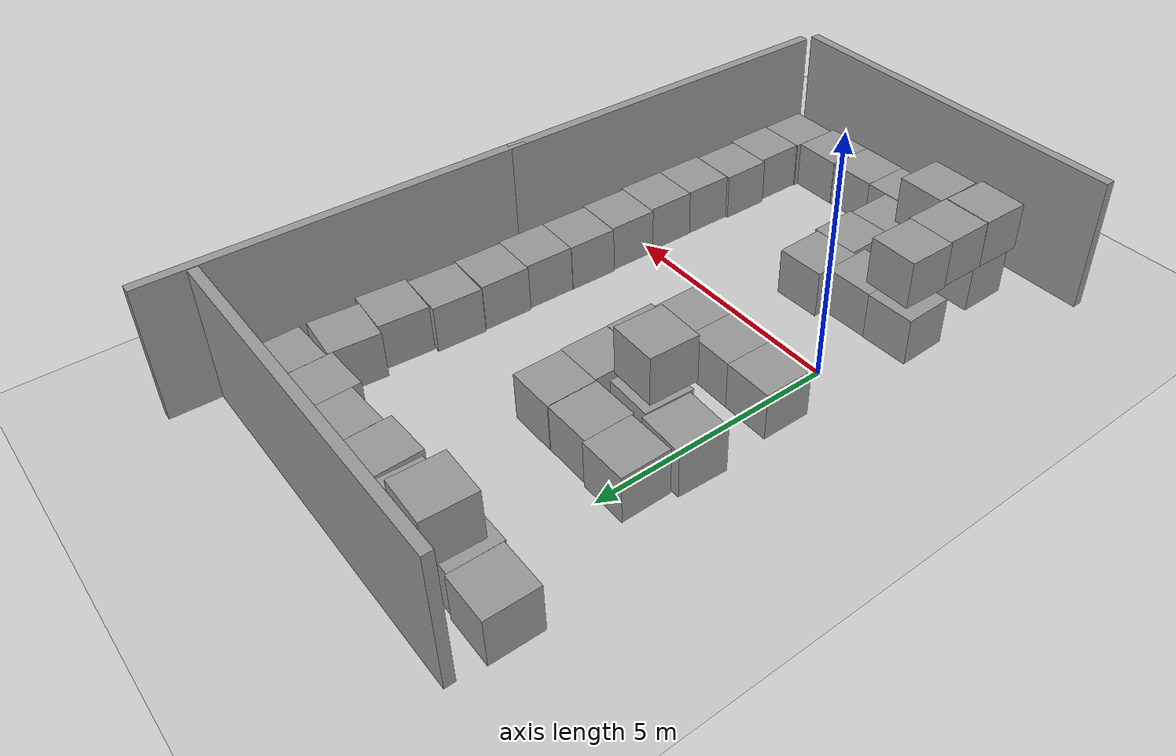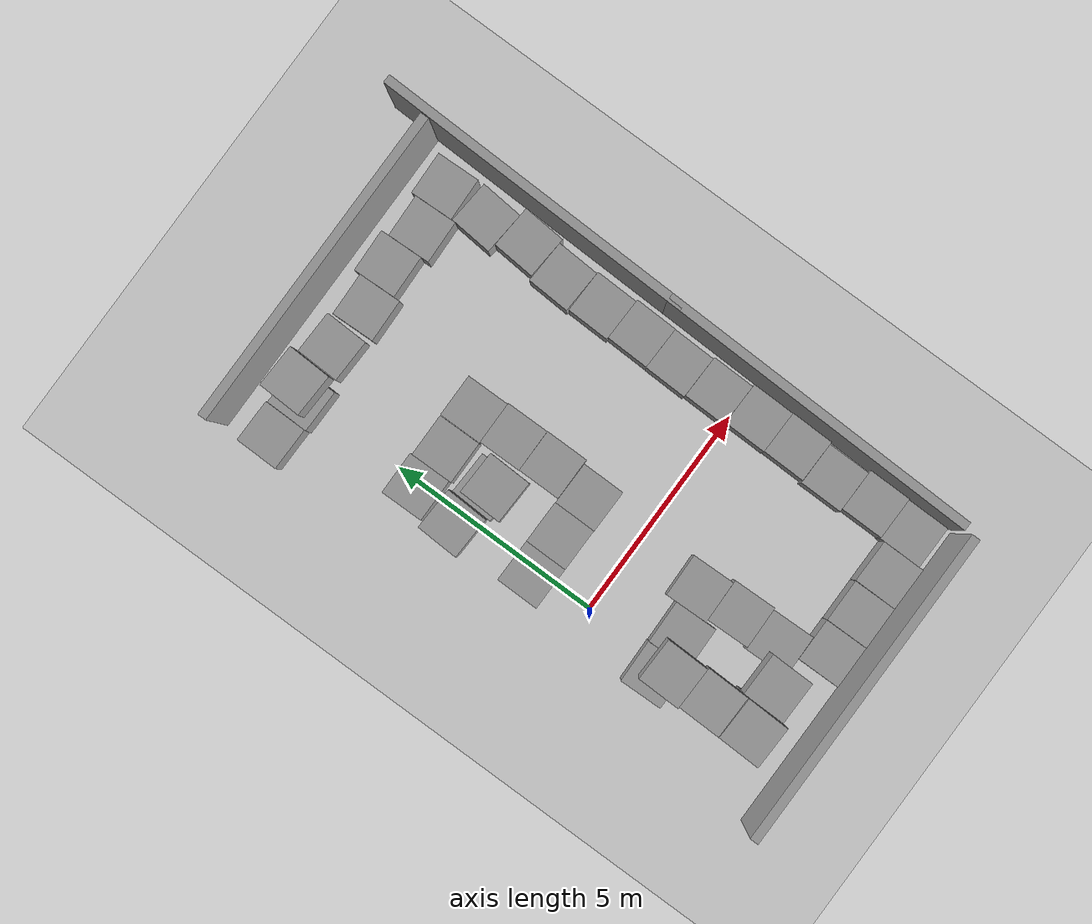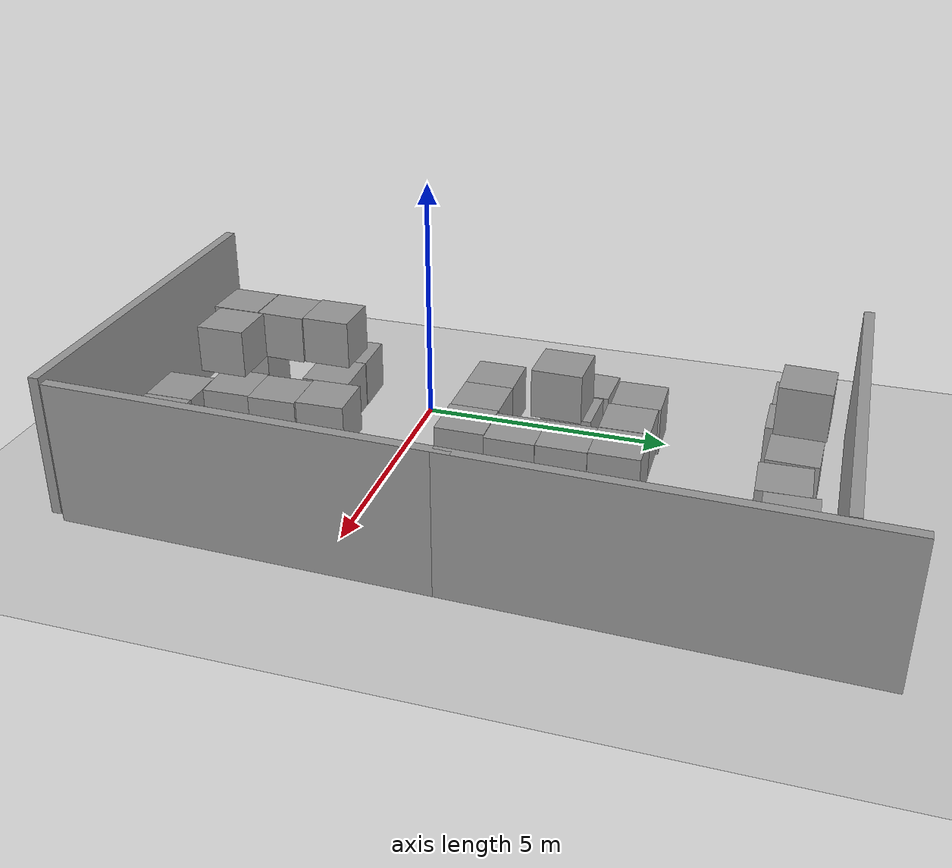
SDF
<sdf version="1.7">
 <world name="default">
  <model name="ground_plane">
   <static>1</static>
   <link name="link">
    <collision name="collision">
     <geometry><plane><normal>0 0 1</normal><size>100 100</size></plane></geometry>
     <surface>
      <contact><collide_bitmask>65535</collide_bitmask></contact>
      <friction><ode><mu>100</mu><mu2>50</mu2></ode></friction>
     </surface>
    </collision>
    <visual name="visual">
     <cast_shadows>0</cast_shadows>
     <geometry><plane><normal>0 0 1</normal><size>100 100</size></plane></geometry>
     <material>
      <script><uri>file://media/materials/scripts/gazebo.material</uri><name>Gazebo/Grey</name></script>
     </material>
    </visual>
   </link>
  </model>
  <model name="unit_box_clone">
   <pose>-0.132579 1.39845 0.499995 -1e-05 -0 -0.006219</pose>
   <link name="link">
    <inertial>
     <mass>1</mass>
     <inertia>
      <ixx>0.166667</ixx>
      <ixy>0</ixy>
      <ixz>0</ixz>
      <iyy>0.166667</iyy>
      <iyz>0</iyz>
      <izz>0.166667</izz>
     </inertia>
    </inertial>
    <collision name="collision"><geometry><box><size>1 1 1</size></box></geometry></collision>
    <visual name="visual">
     <geometry><box><size>1 1 1</size></box></geometry>
     <material>
      <script><name>Gazebo/Grey</name><uri>file://media/materials/scripts/gazebo.material</uri></script>
     </material>
    </visual>
   </link>
  </model>
  <model name="unit_box_clone_0">
   <pose>0.867413 1.39145 0.499995 0 1e-05 -0.006222</pose>
   <link name="link">
    <inertial>
     <mass>1</mass>
     <inertia>
      <ixx>0.166667</ixx>
      <ixy>0</ixy>
      <ixz>0</ixz>
      <iyy>0.166667</iyy>
      <iyz>0</iyz>
      <izz>0.166667</izz>
     </inertia>
    </inertial>
    <collision name="collision"><geometry><box><size>1 1 1</size></box></geometry></collision>
    <visual name="visual">
     <geometry><box><size>1 1 1</size></box></geometry>
     <material>
      <script><name>Gazebo/Grey</name><uri>file://media/materials/scripts/gazebo.material</uri></script>
     </material>
    </visual>
   </link>
  </model>
  <model name="unit_box_clone_1">
   <pose>1.86739 1.3759 0.499995 0 1e-05 -0.006332</pose>
   <link name="link">
    <inertial>
     <mass>1</mass>
     <inertia>
      <ixx>0.166667</ixx>
      <ixy>0</ixy>
      <ixz>0</ixz>
      <iyy>0.166667</iyy>
      <iyz>0</iyz>
      <izz>0.166667</izz>
     </inertia>
    </inertial>
    <collision name="collision"><geometry><box><size>1 1 1</size></box></geometry></collision>
    <visual name="visual">
     <geometry><box><size>1 1 1</size></box></geometry>
     <material>
      <script><name>Gazebo/Grey</name><uri>file://media/materials/scripts/gazebo.material</uri></script>
     </material>
    </visual>
   </link>
  </model>
  <model name="unit_box_clone_4">
   <pose>1.70365 -1.59216 0.5 1e-06 1e-06 0.02274</pose>
   <link name="link">
    <inertial>
     <mass>1</mass>
     <inertia>
      <ixx>0.166667</ixx>
      <ixy>0</ixy>
      <ixz>0</ixz>
      <iyy>0.166667</iyy>
      <iyz>0</iyz>
      <izz>0.166667</izz>
     </inertia>
    </inertial>
    <collision name="collision"><geometry><box><size>1 1 1</size></box></geometry></collision>
    <visual name="visual">
     <geometry><box><size>1 1 1</size></box></geometry>
     <material>
      <script><name>Gazebo/Grey</name><uri>file://media/materials/scripts/gazebo.material</uri></script>
     </material>
    </visual>
   </link>
  </model>
  <model name="unit_box_clone_6">
   <pose>1.923 4.38821 0.499995 0 1e-05 0.004295</pose>
   <link name="link">
    <inertial>
     <mass>1</mass>
     <inertia>
      <ixx>0.166667</ixx>
      <ixy>0</ixy>
      <ixz>0</ixz>
      <iyy>0.166667</iyy>
      <iyz>0</iyz>
      <izz>0.166667</izz>
     </inertia>
    </inertial>
    <collision name="collision"><geometry><box><size>1 1 1</size></box></geometry></collision>
    <visual name="visual">
     <geometry><box><size>1 1 1</size></box></geometry>
     <material>
      <script><name>Gazebo/Grey</name><uri>file://media/materials/scripts/gazebo.material</uri></script>
     </material>
    </visual>
   </link>
  </model>
  <model name="unit_box_clone_7">
   <pose>1.95193 3.38826 0.499995 -0 -1e-05 0.00419</pose>
   <link name="link">
    <inertial>
     <mass>1</mass>
     <inertia>
      <ixx>0.166667</ixx>
      <ixy>0</ixy>
      <ixz>0</ixz>
      <iyy>0.166667</iyy>
      <iyz>0</iyz>
      <izz>0.166667</izz>
     </inertia>
    </inertial>
    <collision name="collision"><geometry><box><size>1 1 1</size></box></geometry></collision>
    <visual name="visual">
     <geometry><box><size>1 1 1</size></box></geometry>
     <material>
      <script><name>Gazebo/Grey</name><uri>file://media/materials/scripts/gazebo.material</uri></script>
     </material>
    </visual>
   </link>
  </model>
  <model name="unit_box_clone_8">
   <pose>1.96251 2.38586 0.499995 -1e-05 -0 -3e-06</pose>
   <link name="link">
    <inertial>
     <mass>1</mass>
     <inertia>
      <ixx>0.166667</ixx>
      <ixy>0</ixy>
      <ixz>0</ixz>
      <iyy>0.166667</iyy>
      <iyz>0</iyz>
      <izz>0.166667</izz>
     </inertia>
    </inertial>
    <collision name="collision"><geometry><box><size>1 1 1</size></box></geometry></collision>
    <visual name="visual">
     <geometry><box><size>1 1 1</size></box></geometry>
     <material>
      <script><name>Gazebo/Grey</name><uri>file://media/materials/scripts/gazebo.material</uri></script>
     </material>
    </visual>
   </link>
  </model>
  <model name="unit_box_clone_2">
   <pose>5.24071 4.53003 0.5 0 -0 -0.051383</pose>
   <link name="link">
    <inertial>
     <mass>1</mass>
     <inertia>
      <ixx>0.166667</ixx>
      <ixy>0</ixy>
      <ixz>0</ixz>
      <iyy>0.166667</iyy>
      <iyz>0</iyz>
      <izz>0.166667</izz>
     </inertia>
    </inertial>
    <collision name="collision"><geometry><box><size>1 1 1</size></box></geometry></collision>
    <visual name="visual">
     <geometry><box><size>1 1 1</size></box></geometry>
     <material>
      <script><name>Gazebo/Grey</name><uri>file://media/materials/scripts/gazebo.material</uri></script>
     </material>
    </visual>
   </link>
  </model>
  <model name="unit_box_clone_9">
   <pose>5.24038 3.51656 0.499995 1e-05 -0 -0.024895</pose>
   <link name="link">
    <inertial>
     <mass>1</mass>
     <inertia>
      <ixx>0.166667</ixx>
      <ixy>0</ixy>
      <ixz>0</ixz>
      <iyy>0.166667</iyy>
      <iyz>0</iyz>
      <izz>0.166667</izz>
     </inertia>
    </inertial>
    <collision name="collision"><geometry><box><size>1 1 1</size></box></geometry></collision>
    <visual name="visual">
     <geometry><box><size>1 1 1</size></box></geometry>
     <material>
      <script><name>Gazebo/Grey</name><uri>file://media/materials/scripts/gazebo.material</uri></script>
     </material>
    </visual>
   </link>
  </model>
  <model name="unit_box_clone_10">
   <pose>5.2593 2.51571 0.499995 1e-05 -0 -0.02486</pose>
   <link name="link">
    <inertial>
     <mass>1</mass>
     <inertia>
      <ixx>0.166667</ixx>
      <ixy>0</ixy>
      <ixz>0</ixz>
      <iyy>0.166667</iyy>
      <iyz>0</iyz>
      <izz>0.166667</izz>
     </inertia>
    </inertial>
    <collision name="collision"><geometry><box><size>1 1 1</size></box></geometry></collision>
    <visual name="visual">
     <geometry><box><size>1 1 1</size></box></geometry>
     <material>
      <script><name>Gazebo/Grey</name><uri>file://media/materials/scripts/gazebo.material</uri></script>
     </material>
    </visual>
   </link>
  </model>
  <model name="unit_box_clone_11">
   <pose>5.22708 1.51607 0.499995 -9e-06 -0 -0.02459</pose>
   <link name="link">
    <inertial>
     <mass>1</mass>
     <inertia>
      <ixx>0.166667</ixx>
      <ixy>0</ixy>
      <ixz>0</ixz>
      <iyy>0.166667</iyy>
      <iyz>0</iyz>
      <izz>0.166667</izz>
     </inertia>
    </inertial>
    <collision name="collision"><geometry><box><size>1 1 1</size></box></geometry></collision>
    <visual name="visual">
     <geometry><box><size>1 1 1</size></box></geometry>
     <material>
      <script><name>Gazebo/Grey</name><uri>file://media/materials/scripts/gazebo.material</uri></script>
     </material>
    </visual>
   </link>
  </model>
  <model name="unit_box_clone_12">
   <pose>5.24466 0.512081 0.499995 1e-05 -0 -0.017527</pose>
   <link name="link">
    <inertial>
     <mass>1</mass>
     <inertia>
      <ixx>0.166667</ixx>
      <ixy>0</ixy>
      <ixz>0</ixz>
      <iyy>0.166667</iyy>
      <iyz>0</iyz>
      <izz>0.166667</izz>
     </inertia>
    </inertial>
    <collision name="collision"><geometry><box><size>1 1 1</size></box></geometry></collision>
    <visual name="visual">
     <geometry><box><size>1 1 1</size></box></geometry>
     <material>
      <script><name>Gazebo/Grey</name><uri>file://media/materials/scripts/gazebo.material</uri></script>
     </material>
    </visual>
   </link>
  </model>
  <model name="unit_box_clone_13">
   <pose>5.28453 -0.489532 0.499995 -1e-05 0 -0.0158</pose>
   <link name="link">
    <inertial>
     <mass>1</mass>
     <inertia>
      <ixx>0.166667</ixx>
      <ixy>0</ixy>
      <ixz>0</ixz>
      <iyy>0.166667</iyy>
      <iyz>0</iyz>
      <izz>0.166667</izz>
     </inertia>
    </inertial>
    <collision name="collision"><geometry><box><size>1 1 1</size></box></geometry></collision>
    <visual name="visual">
     <geometry><box><size>1 1 1</size></box></geometry>
     <material>
      <script><name>Gazebo/Grey</name><uri>file://media/materials/scripts/gazebo.material</uri></script>
     </material>
    </visual>
   </link>
  </model>
  <model name="unit_box_clone_3">
   <pose>5.27918 -1.48959 0.499995 -1e-05 0 -0.015767</pose>
   <link name="link">
    <inertial>
     <mass>1</mass>
     <inertia>
      <ixx>0.166667</ixx>
      <ixy>0</ixy>
      <ixz>0</ixz>
      <iyy>0.166667</iyy>
      <iyz>0</iyz>
      <izz>0.166667</izz>
     </inertia>
    </inertial>
    <collision name="collision"><geometry><box><size>1 1 1</size></box></geometry></collision>
    <visual name="visual">
     <geometry><box><size>1 1 1</size></box></geometry>
     <material>
      <script><name>Gazebo/Grey</name><uri>file://media/materials/scripts/gazebo.material</uri></script>
     </material>
    </visual>
   </link>
  </model>
  <model name="unit_box_clone_14">
   <pose>5.21612 -2.49294 0.499995 -1e-05 -0 -0.007308</pose>
   <link name="link">
    <inertial>
     <mass>1</mass>
     <inertia>
      <ixx>0.166667</ixx>
      <ixy>0</ixy>
      <ixz>0</ixz>
      <iyy>0.166667</iyy>
      <iyz>0</iyz>
      <izz>0.166667</izz>
     </inertia>
    </inertial>
    <collision name="collision"><geometry><box><size>1 1 1</size></box></geometry></collision>
    <visual name="visual">
     <geometry><box><size>1 1 1</size></box></geometry>
     <material>
      <script><name>Gazebo/Grey</name><uri>file://media/materials/scripts/gazebo.material</uri></script>
     </material>
    </visual>
   </link>
  </model>
  <model name="unit_box_clone_15">
   <pose>5.27879 -3.4941 0.499995 0 -1e-05 -0.005767</pose>
   <link name="link">
    <inertial>
     <mass>1</mass>
     <inertia>
      <ixx>0.166667</ixx>
      <ixy>0</ixy>
      <ixz>0</ixz>
      <iyy>0.166667</iyy>
      <iyz>0</iyz>
      <izz>0.166667</izz>
     </inertia>
    </inertial>
    <collision name="collision"><geometry><box><size>1 1 1</size></box></geometry></collision>
    <visual name="visual">
     <geometry><box><size>1 1 1</size></box></geometry>
     <material>
      <script><name>Gazebo/Grey</name><uri>file://media/materials/scripts/gazebo.material</uri></script>
     </material>
    </visual>
   </link>
  </model>
  <model name="unit_box_clone_17">
   <pose>1.78949 -2.59114 0.499996 0 7e-06 0.022408</pose>
   <link name="link">
    <inertial>
     <mass>1</mass>
     <inertia>
      <ixx>0.166667</ixx>
      <ixy>0</ixy>
      <ixz>0</ixz>
      <iyy>0.166667</iyy>
      <iyz>0</iyz>
      <izz>0.166667</izz>
     </inertia>
    </inertial>
    <collision name="collision"><geometry><box><size>1 1 1</size></box></geometry></collision>
    <visual name="visual">
     <geometry><box><size>1 1 1</size></box></geometry>
     <material>
      <script><name>Gazebo/Grey</name><uri>file://media/materials/scripts/gazebo.material</uri></script>
     </material>
    </visual>
   </link>
  </model>
  <model name="unit_box_clone_18">
   <pose>1.77207 -3.59178 0.5 0 -0 0.02241</pose>
   <link name="link">
    <inertial>
     <mass>1</mass>
     <inertia>
      <ixx>0.166667</ixx>
      <ixy>0</ixy>
      <ixz>0</ixz>
      <iyy>0.166667</iyy>
      <iyz>0</iyz>
      <izz>0.166667</izz>
     </inertia>
    </inertial>
    <collision name="collision"><geometry><box><size>1 1 1</size></box></geometry></collision>
    <visual name="visual">
     <geometry><box><size>1 1 1</size></box></geometry>
     <material>
      <script><name>Gazebo/Grey</name><uri>file://media/materials/scripts/gazebo.material</uri></script>
     </material>
    </visual>
   </link>
  </model>
  <model name="unit_box_clone_19">
   <pose>3.24789 -4.5927 0.499995 -1e-05 -0 0.00455</pose>
   <link name="link">
    <inertial>
     <mass>1</mass>
     <inertia>
      <ixx>0.166667</ixx>
      <ixy>0</ixy>
      <ixz>0</ixz>
      <iyy>0.166667</iyy>
      <iyz>0</iyz>
      <izz>0.166667</izz>
     </inertia>
    </inertial>
    <collision name="collision"><geometry><box><size>1 1 1</size></box></geometry></collision>
    <visual name="visual">
     <geometry><box><size>1 1 1</size></box></geometry>
     <material>
      <script><name>Gazebo/Grey</name><uri>file://media/materials/scripts/gazebo.material</uri></script>
     </material>
    </visual>
   </link>
  </model>
  <model name="unit_box_clone_20">
   <pose>4.25197 -4.59042 0.499995 0 -1e-05 -0.003646</pose>
   <link name="link">
    <inertial>
     <mass>1</mass>
     <inertia>
      <ixx>0.166667</ixx>
      <ixy>0</ixy>
      <ixz>0</ixz>
      <iyy>0.166667</iyy>
      <iyz>0</iyz>
      <izz>0.166667</izz>
     </inertia>
    </inertial>
    <collision name="collision"><geometry><box><size>1 1 1</size></box></geometry></collision>
    <visual name="visual">
     <geometry><box><size>1 1 1</size></box></geometry>
     <material>
      <script><name>Gazebo/Grey</name><uri>file://media/materials/scripts/gazebo.material</uri></script>
     </material>
    </visual>
   </link>
  </model>
  <model name="unit_box_clone_21">
   <pose>0.709183 -1.86933 0.499997 -0 -7e-06 0.021727</pose>
   <link name="link">
    <inertial>
     <mass>1</mass>
     <inertia>
      <ixx>0.166667</ixx>
      <ixy>0</ixy>
      <ixz>0</ixz>
      <iyy>0.166667</iyy>
      <iyz>0</iyz>
      <izz>0.166667</izz>
     </inertia>
    </inertial>
    <collision name="collision"><geometry><box><size>1 1 1</size></box></geometry></collision>
    <visual name="visual">
     <geometry><box><size>1 1 1</size></box></geometry>
     <material>
      <script><name>Gazebo/Grey</name><uri>file://media/materials/scripts/gazebo.material</uri></script>
     </material>
    </visual>
   </link>
  </model>
  <model name="unit_box_clone_22">
   <pose>-0.29112 -1.88021 0.5 0 -0 0.022311</pose>
   <link name="link">
    <inertial>
     <mass>1</mass>
     <inertia>
      <ixx>0.166667</ixx>
      <ixy>0</ixy>
      <ixz>0</ixz>
      <iyy>0.166667</iyy>
      <iyz>0</iyz>
      <izz>0.166667</izz>
     </inertia>
    </inertial>
    <collision name="collision"><geometry><box><size>1 1 1</size></box></geometry></collision>
    <visual name="visual">
     <geometry><box><size>1 1 1</size></box></geometry>
     <material>
      <script><name>Gazebo/Grey</name><uri>file://media/materials/scripts/gazebo.material</uri></script>
     </material>
    </visual>
   </link>
  </model>
  <model name="unit_box_clone_33">
   <pose>5.40128 5.53305 0.5 0 -0 -0.075823</pose>
   <link name="link">
    <inertial>
     <mass>1</mass>
     <inertia>
      <ixx>0.166667</ixx>
      <ixy>0</ixy>
      <ixz>0</ixz>
      <iyy>0.166667</iyy>
      <iyz>0</iyz>
      <izz>0.166667</izz>
     </inertia>
    </inertial>
    <collision name="collision"><geometry><box><size>1 1 1</size></box></geometry></collision>
    <visual name="visual">
     <geometry><box><size>1 1 1</size></box></geometry>
     <material>
      <script><name>Gazebo/Grey</name><uri>file://media/materials/scripts/gazebo.material</uri></script>
     </material>
    </visual>
   </link>
  </model>
  <model name="unit_box_clone_30_clone_0">
   <pose>0.913451 4.3768 0.499995 1e-05 0 0.007496</pose>
   <link name="link">
    <inertial>
     <mass>1</mass>
     <inertia>
      <ixx>0.166667</ixx>
      <ixy>0</ixy>
      <ixz>0</ixz>
      <iyy>0.166667</iyy>
      <iyz>0</iyz>
      <izz>0.166667</izz>
     </inertia>
    </inertial>
    <collision name="collision"><geometry><box><size>1 1 1</size></box></geometry></collision>
    <visual name="visual">
     <geometry><box><size>1 1 1</size></box></geometry>
     <material>
      <script><name>Gazebo/Grey</name><uri>file://media/materials/scripts/gazebo.material</uri></script>
     </material>
    </visual>
   </link>
  </model>
  <model name="unit_box_clone_33_clone">
   <pose>5.28637 6.55023 0.499995 1e-05 -0 -0.086997</pose>
   <link name="link">
    <inertial>
     <mass>1</mass>
     <inertia>
      <ixx>0.166667</ixx>
      <ixy>0</ixy>
      <ixz>0</ixz>
      <iyy>0.166667</iyy>
      <iyz>0</iyz>
      <izz>0.166667</izz>
     </inertia>
    </inertial>
    <collision name="collision"><geometry><box><size>1 1 1</size></box></geometry></collision>
    <visual name="visual">
     <geometry><box><size>1 1 1</size></box></geometry>
     <material>
      <script><name>Gazebo/Grey</name><uri>file://media/materials/scripts/gazebo.material</uri></script>
     </material>
    </visual>
   </link>
  </model>
  <model name="unit_box_clone_18_clone">
   <pose>2.24502 -4.59293 0.499995 0 1e-05 0.005246</pose>
   <link name="link">
    <inertial>
     <mass>1</mass>
     <inertia>
      <ixx>0.166667</ixx>
      <ixy>0</ixy>
      <ixz>0</ixz>
      <iyy>0.166667</iyy>
      <iyz>0</iyz>
      <izz>0.166667</izz>
     </inertia>
    </inertial>
    <collision name="collision"><geometry><box><size>1 1 1</size></box></geometry></collision>
    <visual name="visual">
     <geometry><box><size>1 1 1</size></box></geometry>
     <material>
      <script><name>Gazebo/Grey</name><uri>file://media/materials/scripts/gazebo.material</uri></script>
     </material>
    </visual>
   </link>
  </model>
  <model name="unit_box_clone_15_clone">
   <pose>5.2534 -4.49398 0.499995 0 -1e-05 -0.005769</pose>
   <link name="link">
    <inertial>
     <mass>1</mass>
     <inertia>
      <ixx>0.166667</ixx>
      <ixy>0</ixy>
      <ixz>0</ixz>
      <iyy>0.166667</iyy>
      <iyz>0</iyz>
      <izz>0.166667</izz>
     </inertia>
    </inertial>
    <collision name="collision"><geometry><box><size>1 1 1</size></box></geometry></collision>
    <visual name="visual">
     <geometry><box><size>1 1 1</size></box></geometry>
     <material>
      <script><name>Gazebo/Grey</name><uri>file://media/materials/scripts/gazebo.material</uri></script>
     </material>
    </visual>
   </link>
  </model>
  <model name="unit_box_clone_5">
   <pose>5.30362 7.63166 0.499995 -0 -1e-05 0.033601</pose>
   <link name="link">
    <inertial>
     <mass>1</mass>
     <inertia>
      <ixx>0.166667</ixx>
      <ixy>0</ixy>
      <ixz>0</ixz>
      <iyy>0.166667</iyy>
      <iyz>0</iyz>
      <izz>0.166667</izz>
     </inertia>
    </inertial>
    <collision name="collision"><geometry><box><size>1 1 1</size></box></geometry></collision>
    <visual name="visual">
     <geometry><box><size>1 1 1</size></box></geometry>
     <material>
      <script><name>Gazebo/Grey</name><uri>file://media/materials/scripts/gazebo.material</uri></script>
     </material>
    </visual>
   </link>
  </model>
  <model name="unit_box_clone_16">
   <pose>4.30572 7.4888 0.499995 -1e-05 -0 0.033317</pose>
   <link name="link">
    <inertial>
     <mass>1</mass>
     <inertia>
      <ixx>0.166667</ixx>
      <ixy>0</ixy>
      <ixz>0</ixz>
      <iyy>0.166667</iyy>
      <iyz>0</iyz>
      <izz>0.166667</izz>
     </inertia>
    </inertial>
    <collision name="collision"><geometry><box><size>1 1 1</size></box></geometry></collision>
    <visual name="visual">
     <geometry><box><size>1 1 1</size></box></geometry>
     <material>
      <script><name>Gazebo/Grey</name><uri>file://media/materials/scripts/gazebo.material</uri></script>
     </material>
    </visual>
   </link>
  </model>
  <model name="unit_box_clone_30">
   <pose>3.29927 7.63207 0.499995 0 1e-05 0.033611</pose>
   <link name="link">
    <inertial>
     <mass>1</mass>
     <inertia>
      <ixx>0.166667</ixx>
      <ixy>0</ixy>
      <ixz>0</ixz>
      <iyy>0.166667</iyy>
      <iyz>0</iyz>
      <izz>0.166667</izz>
     </inertia>
    </inertial>
    <collision name="collision"><geometry><box><size>1 1 1</size></box></geometry></collision>
    <visual name="visual">
     <geometry><box><size>1 1 1</size></box></geometry>
     <material>
      <script><name>Gazebo/Grey</name><uri>file://media/materials/scripts/gazebo.material</uri></script>
     </material>
    </visual>
   </link>
  </model>
  <model name="unit_box_clone_31">
   <pose>1.22449 7.54448 0.499995 0 -1e-05 -0.02978</pose>
   <link name="link">
    <inertial>
     <mass>1</mass>
     <inertia>
      <ixx>0.166667</ixx>
      <ixy>0</ixy>
      <ixz>0</ixz>
      <iyy>0.166667</iyy>
      <iyz>0</iyz>
      <izz>0.166667</izz>
     </inertia>
    </inertial>
    <collision name="collision"><geometry><box><size>1 1 1</size></box></geometry></collision>
    <visual name="visual">
     <geometry><box><size>1 1 1</size></box></geometry>
     <material>
      <script><name>Gazebo/Grey</name><uri>file://media/materials/scripts/gazebo.material</uri></script>
     </material>
    </visual>
   </link>
  </model>
  <model name="unit_box_clone_32">
   <pose>0.219707 7.60983 1.49131 -0.005326 0.006035 -0.038045</pose>
   <link name="link">
    <inertial>
     <mass>1</mass>
     <inertia>
      <ixx>0.166667</ixx>
      <ixy>0</ixy>
      <ixz>0</ixz>
      <iyy>0.166667</iyy>
      <iyz>0</iyz>
      <izz>0.166667</izz>
     </inertia>
    </inertial>
    <collision name="collision"><geometry><box><size>1 1 1</size></box></geometry></collision>
    <visual name="visual">
     <geometry><box><size>1 1 1</size></box></geometry>
     <material>
      <script><name>Gazebo/Grey</name><uri>file://media/materials/scripts/gazebo.material</uri></script>
     </material>
    </visual>
   </link>
  </model>
  <model name="unit_box_clone_34">
   <pose>2.30255 7.45038 0.499995 1e-05 -0 0.029372</pose>
   <link name="link">
    <inertial>
     <mass>1</mass>
     <inertia>
      <ixx>0.166667</ixx>
      <ixy>0</ixy>
      <ixz>0</ixz>
      <iyy>0.166667</iyy>
      <iyz>0</iyz>
      <izz>0.166667</izz>
     </inertia>
    </inertial>
    <collision name="collision"><geometry><box><size>1 1 1</size></box></geometry></collision>
    <visual name="visual">
     <geometry><box><size>1 1 1</size></box></geometry>
     <material>
      <script><name>Gazebo/Grey</name><uri>file://media/materials/scripts/gazebo.material</uri></script>
     </material>
    </visual>
   </link>
  </model>
  <model name="unit_box_clone_35">
   <pose>-0.087162 4.41384 0.5 0 -0 0.007872</pose>
   <link name="link">
    <inertial>
     <mass>1</mass>
     <inertia>
      <ixx>0.166667</ixx>
      <ixy>0</ixy>
      <ixz>0</ixz>
      <iyy>0.166667</iyy>
      <iyz>0</iyz>
      <izz>0.166667</izz>
     </inertia>
    </inertial>
    <collision name="collision"><geometry><box><size>1 1 1</size></box></geometry></collision>
    <visual name="visual">
     <geometry><box><size>1 1 1</size></box></geometry>
     <material>
      <script><name>Gazebo/Grey</name><uri>file://media/materials/scripts/gazebo.material</uri></script>
     </material>
    </visual>
   </link>
  </model>
  <model name="unit_box_clone_39">
   <pose>-0.003061 7.42906 0.493621 -0.005135 0.006155 -0.010257</pose>
   <link name="link">
    <inertial>
     <mass>1</mass>
     <inertia>
      <ixx>0.166667</ixx>
      <ixy>0</ixy>
      <ixz>0</ixz>
      <iyy>0.166667</iyy>
      <iyz>0</iyz>
      <izz>0.166667</izz>
     </inertia>
    </inertial>
    <collision name="collision"><geometry><box><size>1 1 1</size></box></geometry></collision>
    <visual name="visual">
     <geometry><box><size>1 1 1</size></box></geometry>
     <material>
      <script><name>Gazebo/Grey</name><uri>file://media/materials/scripts/gazebo.material</uri></script>
     </material>
    </visual>
   </link>
  </model>
  <model name="unit_box_clone_40">
   <pose>-1.00258 7.47483 0.5 -0 -0 -0.010443</pose>
   <link name="link">
    <inertial>
     <mass>1</mass>
     <inertia>
      <ixx>0.166667</ixx>
      <ixy>0</ixy>
      <ixz>0</ixz>
      <iyy>0.166667</iyy>
      <iyz>0</iyz>
      <izz>0.166667</izz>
     </inertia>
    </inertial>
    <collision name="collision"><geometry><box><size>1 1 1</size></box></geometry></collision>
    <visual name="visual">
     <geometry><box><size>1 1 1</size></box></geometry>
     <material>
      <script><name>Gazebo/Grey</name><uri>file://media/materials/scripts/gazebo.material</uri></script>
     </material>
    </visual>
   </link>
  </model>
  <model name="grey_wall">
   <static>1</static>
   <link name="link">
    <pose>0 0 1.4 0 -0 0</pose>
    <collision name="collision"><geometry><box><size>7.5 0.2 2.8</size></box></geometry></collision>
    <visual name="visual">
     <cast_shadows>0</cast_shadows>
     <geometry><box><size>7.5 0.2 2.8</size></box></geometry>
     <material>
      <script>
       <uri>model://grey_wall/materials/scripts</uri>
       <uri>model://grey_wall/materials/textures</uri>
       <name>vrc/grey_wall</name>
      </script>
     </material>
    </visual>
   </link>
   <pose>2.03591 -5.31613 0 0 -0 0</pose>
  </model>
  <model name="grey_wall_clone_0">
   <static>1</static>
   <link name="link">
    <pose>0 0 1.4 0 -0 0</pose>
    <collision name="collision"><geometry><box><size>7.5 0.2 2.8</size></box></geometry></collision>
    <visual name="visual">
     <cast_shadows>0</cast_shadows>
     <geometry><box><size>7.5 0.2 2.8</size></box></geometry>
     <material>
      <script>
       <uri>model://grey_wall/materials/scripts</uri>
       <uri>model://grey_wall/materials/textures</uri>
       <name>vrc/grey_wall</name>
      </script>
     </material>
    </visual>
   </link>
   <pose>5.94688 -1.3068 0 0 -0 1.54652</pose>
  </model>
  <model name="grey_wall_clone_clone_clone">
   <static>1</static>
   <link name="link">
    <pose>0 0 1.4 0 -0 0</pose>
    <collision name="collision"><geometry><box><size>7.5 0.2 2.8</size></box></geometry></collision>
    <visual name="visual">
     <cast_shadows>0</cast_shadows>
     <geometry><box><size>7.5 0.2 2.8</size></box></geometry>
     <material>
      <script>
       <uri>model://grey_wall/materials/scripts</uri>
       <uri>model://grey_wall/materials/textures</uri>
       <name>vrc/grey_wall</name>
      </script>
     </material>
    </visual>
   </link>
   <pose>2.31716 8.5534 0 0 -0 0</pose>
  </model>
  <model name="grey_wall_clone_0_clone">
   <static>1</static>
   <link name="link">
    <pose>0 0 1.4 0 -0 0</pose>
    <collision name="collision"><geometry><box><size>7.5 0.2 2.8</size></box></geometry></collision>
    <visual name="visual">
     <cast_shadows>0</cast_shadows>
     <geometry><box><size>7.5 0.2 2.8</size></box></geometry>
     <material>
      <script>
       <uri>model://grey_wall/materials/scripts</uri>
       <uri>model://grey_wall/materials/textures</uri>
       <name>vrc/grey_wall</name>
      </script>
     </material>
    </visual>
   </link>
   <pose>6.12115 5.86522 0 0 -0 1.54652</pose>
  </model>
  <model name="unit_box_clone_32_clone">
   <pose>0.769553 3.22604 0.494445 0.004443 0.00312 -0.038003</pose>
   <link name="link">
    <inertial>
     <mass>1</mass>
     <inertia>
      <ixx>0.166667</ixx>
      <ixy>0</ixy>
      <ixz>0</ixz>
      <iyy>0.166667</iyy>
      <iyz>0</iyz>
      <izz>0.166667</izz>
     </inertia>
    </inertial>
    <collision name="collision"><geometry><box><size>1 1 1</size></box></geometry></collision>
    <visual name="visual">
     <geometry><box><size>1 1 1</size></box></geometry>
     <material>
      <script><name>Gazebo/Grey</name><uri>file://media/materials/scripts/gazebo.material</uri></script>
     </material>
    </visual>
   </link>
  </model>
  <model name="unit_box_clone_32_clone_0">
   <pose>-0.252868 3.35552 0.499995 -1e-05 -0 -0.042493</pose>
   <link name="link">
    <inertial>
     <mass>1</mass>
     <inertia>
      <ixx>0.166667</ixx>
      <ixy>0</ixy>
      <ixz>0</ixz>
      <iyy>0.166667</iyy>
      <iyz>0</iyz>
      <izz>0.166667</izz>
     </inertia>
    </inertial>
    <collision name="collision"><geometry><box><size>1 1 1</size></box></geometry></collision>
    <visual name="visual">
     <geometry><box><size>1 1 1</size></box></geometry>
     <material>
      <script><name>Gazebo/Grey</name><uri>file://media/materials/scripts/gazebo.material</uri></script>
     </material>
    </visual>
   </link>
  </model>
  <model name="unit_box_clone_32_clone_2">
   <pose>0.886098 3.04113 1.49324 0.00448 0.003111 -0.032755</pose>
   <link name="link">
    <inertial>
     <mass>1</mass>
     <inertia>
      <ixx>0.166667</ixx>
      <ixy>0</ixy>
      <ixz>0</ixz>
      <iyy>0.166667</iyy>
      <iyz>0</iyz>
      <izz>0.166667</izz>
     </inertia>
    </inertial>
    <collision name="collision"><geometry><box><size>1 1 1</size></box></geometry></collision>
    <visual name="visual">
     <geometry><box><size>1 1 1</size></box></geometry>
     <material>
      <script><name>Gazebo/Grey</name><uri>file://media/materials/scripts/gazebo.material</uri></script>
     </material>
    </visual>
   </link>
  </model>
  <model name="unit_box_clone_32_clone_2_clone_1">
   <pose>0.023745 -3.98376 0.500161 1e-06 0.000326 0.002751</pose>
   <link name="link">
    <inertial>
     <mass>1</mass>
     <inertia>
      <ixx>0.166667</ixx>
      <ixy>0</ixy>
      <ixz>0</ixz>
      <iyy>0.166667</iyy>
      <iyz>0</iyz>
      <izz>0.166667</izz>
     </inertia>
    </inertial>
    <collision name="collision"><geometry><box><size>1 1 1</size></box></geometry></collision>
    <visual name="visual">
     <geometry><box><size>1 1 1</size></box></geometry>
     <material>
      <script><name>Gazebo/Grey</name><uri>file://media/materials/scripts/gazebo.material</uri></script>
     </material>
    </visual>
   </link>
  </model>
  <model name="unit_box_clone_32_clone_2_clone_2">
   <pose>-0.011398 -2.11889 1.5 -0.0004 -4.4e-05 -0.019424</pose>
   <link name="link">
    <inertial>
     <mass>1</mass>
     <inertia>
      <ixx>0.166667</ixx>
      <ixy>0</ixy>
      <ixz>0</ixz>
      <iyy>0.166667</iyy>
      <iyz>0</iyz>
      <izz>0.166667</izz>
     </inertia>
    </inertial>
    <collision name="collision"><geometry><box><size>1 1 1</size></box></geometry></collision>
    <visual name="visual">
     <geometry><box><size>1 1 1</size></box></geometry>
     <material>
      <script><name>Gazebo/Grey</name><uri>file://media/materials/scripts/gazebo.material</uri></script>
     </material>
    </visual>
   </link>
  </model>
  <model name="unit_box_clone_32_clone_2_clone_3">
   <pose>0.00653 -3.12413 1.49693 -0.00984 0.000662 -0.019425</pose>
   <link name="link">
    <inertial>
     <mass>1</mass>
     <inertia>
      <ixx>0.166667</ixx>
      <ixy>0</ixy>
      <ixz>0</ixz>
      <iyy>0.166667</iyy>
      <iyz>0</iyz>
      <izz>0.166667</izz>
     </inertia>
    </inertial>
    <collision name="collision"><geometry><box><size>1 1 1</size></box></geometry></collision>
    <visual name="visual">
     <geometry><box><size>1 1 1</size></box></geometry>
     <material>
      <script><name>Gazebo/Grey</name><uri>file://media/materials/scripts/gazebo.material</uri></script>
     </material>
    </visual>
   </link>
  </model>
  <model name="unit_box_clone_32_clone_2_clone_4">
   <pose>1.00539 -4.0077 1.50001 2.9e-05 2.1e-05 -0.012156</pose>
   <link name="link">
    <inertial>
     <mass>1</mass>
     <inertia>
      <ixx>0.166667</ixx>
      <ixy>0</ixy>
      <ixz>0</ixz>
      <iyy>0.166667</iyy>
      <iyz>0</iyz>
      <izz>0.166667</izz>
     </inertia>
    </inertial>
    <collision name="collision"><geometry><box><size>1 1 1</size></box></geometry></collision>
    <visual name="visual">
     <geometry><box><size>1 1 1</size></box></geometry>
     <material>
      <script><name>Gazebo/Grey</name><uri>file://media/materials/scripts/gazebo.material</uri></script>
     </material>
    </visual>
   </link>
  </model>
  <model name="unit_box_clone_32_clone_2_clone_5">
   <pose>-0.015056 -4.1346 1.50022 0.0002 0.00036 -0.026984</pose>
   <link name="link">
    <inertial>
     <mass>1</mass>
     <inertia>
      <ixx>0.166667</ixx>
      <ixy>0</ixy>
      <ixz>0</ixz>
      <iyy>0.166667</iyy>
      <iyz>0</iyz>
      <izz>0.166667</izz>
     </inertia>
    </inertial>
    <collision name="collision"><geometry><box><size>1 1 1</size></box></geometry></collision>
    <visual name="visual">
     <geometry><box><size>1 1 1</size></box></geometry>
     <material>
      <script><name>Gazebo/Grey</name><uri>file://media/materials/scripts/gazebo.material</uri></script>
     </material>
    </visual>
   </link>
  </model>
 </world>
</sdf>
